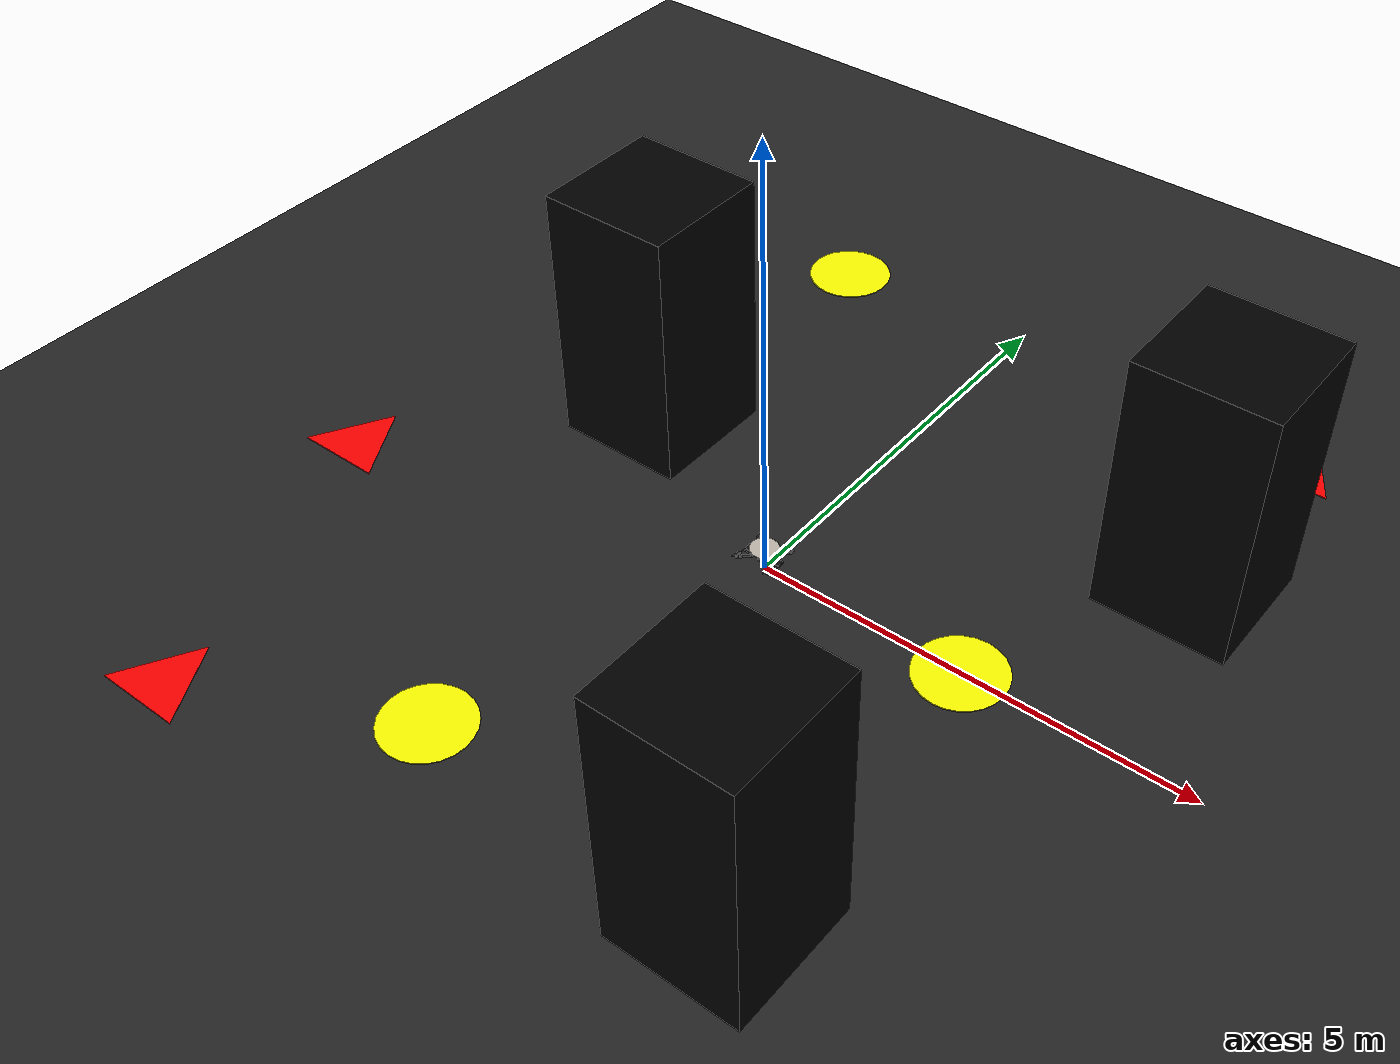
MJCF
<mujoco model="swift_pico">

  <include file="arena.xml"/>

  <asset>
    <mesh name="base_link" file="meshes/base_link.obj" scale="5 5 5"/>
    <mesh name="m1_link"   file="meshes/m1_link.obj"   scale="5 5 5"/>
    <mesh name="m4_link"   file="meshes/m4_link.obj"   scale="5 5 5"/>

    <mesh name="whycode_marker" file="meshes/whycon_marker.obj" scale="0.5 0.5 0.5"/>
    <texture name="whycode_marker_tex" type="2d" file="meshes/textures/whycode_marker_1.png"/>

    <material name="whycode_marker_mat" texture="whycode_marker_tex"
              specular="0.0" shininess="0.0" reflectance="0.0"/>
  </asset>

  <worldbody>
    <body name="drone" pos="0 0 0.3" euler="0 0 180">
      <freejoint name="drone_freejoint"/>

      <!-- Physics collision box (matches SDF: 0.47×0.47×0.11 at z=-0.12) -->
      <inertial mass="1.5" pos="0 0 0"
                fullinertia="0.0347563 0.07 0.0977 0 0 0"/>
      <geom name="body_col" type="box" size="0.235 0.235 0.055" pos="0 0 -0.12"
            rgba="0 0 0 0" contype="1" conaffinity="1"/>

      <!-- ── Visual meshes (no collision) ── -->

      <geom name="body_vis" type="mesh" mesh="base_link" pos="0 0 -0.029"
            rgba="0.05 0.05 0.05 1" contype="0" conaffinity="0"/>

      <!-- m1: front-right, ccw — dark gray so bright propeller edges do not
           create circular ring patterns that confuse WhyCon's circle detector -->
      <body name="prop_m1" pos="0.187 -0.187 -0.059">
        <joint name="spin_m1" type="hinge" axis="0 0 1"
               limited="false" damping="0" armature="0" frictionloss="0"/>
        <geom name="m1_vis" type="mesh" mesh="m1_link"
              rgba="0.15 0.15 0.15 1" contype="0" conaffinity="0"/>
      </body>

      <!-- m2: back-left, ccw -->
      <body name="prop_m2" pos="-0.187 0.187 -0.059">
        <joint name="spin_m2" type="hinge" axis="0 0 1"
               limited="false" damping="0" armature="0" frictionloss="0"/>
        <geom name="m2_vis" type="mesh" mesh="m1_link"
              rgba="0.15 0.15 0.15 1" contype="0" conaffinity="0"/>
      </body>

      <!-- m3: front-left, cw -->
      <body name="prop_m3" pos="0.187 0.187 -0.059">
        <joint name="spin_m3" type="hinge" axis="0 0 1"
               limited="false" damping="0" armature="0" frictionloss="0"/>
        <geom name="m3_vis" type="mesh" mesh="m4_link"
              rgba="0.15 0.15 0.15 1" contype="0" conaffinity="0"/>
      </body>

      <!-- m4: back-right, cw -->
      <body name="prop_m4" pos="-0.187 -0.187 -0.059">
        <joint name="spin_m4" type="hinge" axis="0 0 1"
               limited="false" damping="0" armature="0" frictionloss="0"/>
        <geom name="m4_vis" type="mesh" mesh="m4_link"
              rgba="0.15 0.15 0.15 1" contype="0" conaffinity="0"/>
      </body>

      <!-- WhyCode marker ID 1. -->
      <geom name="whycode_marker" type="mesh" mesh="whycode_marker"
            material="whycode_marker_mat" pos="0 0 -0.026"
            contype="0" conaffinity="0"/>

      <!-- ── Thrust sites (motor force application points) ── -->
      <!-- m1 FR ccw: reactive yaw = -Km = -0.016 -->
      <site name="thrust_m1" pos="0.19 -0.19 -0.12" size="0.01" rgba="1 0 0 0"/>
      <!-- m2 BL ccw: reactive yaw = -Km -->
      <site name="thrust_m2" pos="-0.19 0.19 -0.12" size="0.01" rgba="1 0 0 0"/>
      <!-- m3 FL cw: reactive yaw = +Km = +0.016 -->
      <site name="thrust_m3" pos="0.19 0.19 -0.12" size="0.01" rgba="0 0 1 0"/>
      <!-- m4 BR cw: reactive yaw = +Km -->
      <site name="thrust_m4" pos="-0.19 -0.19 -0.12" size="0.01" rgba="0 0 1 0"/>

    </body>
  </worldbody>

  <actuator>
    <motor name="m1" site="thrust_m1" gear="0 0 1 0 0 -0.016" ctrllimited="true" ctrlrange="0 5.47"/>
    <motor name="m2" site="thrust_m2" gear="0 0 1 0 0 -0.016" ctrllimited="true" ctrlrange="0 5.47"/>
    <motor name="m3" site="thrust_m3" gear="0 0 1 0 0  0.016" ctrllimited="true" ctrlrange="0 5.47"/>
    <motor name="m4" site="thrust_m4" gear="0 0 1 0 0  0.016" ctrllimited="true" ctrlrange="0 5.47"/>
  </actuator>

</mujoco>

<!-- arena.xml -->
<mujoco model="khojo_arena">

  <option gravity="0 0 -9.81" timestep="0.005" integrator="RK4"/>

  <visual>
    <!-- Headlight follows the active camera — at z=20 pointing down it acts as overhead sun -->
    <headlight ambient="0.7 0.7 0.7" diffuse="0.9 0.9 0.9" specular="0.1 0.1 0.1"/>
    <rgba haze="0.0 0.0 0.0 1"/>
    <global azimuth="120" elevation="-20" offwidth="1920" offheight="1920"/>

    <quality offsamples="0" shadowsize="0" numslices="14" numstacks="8" numquads="2"/>
  </visual>

  <asset>
    <!-- ── Skybox / floor ── -->
    <texture type="skybox" builtin="gradient" rgb1="0.4 0.6 0.8" rgb2="0 0 0"
             width="512" height="512"/>
    <material name="floor_mat" rgba="0.15 0.15 0.15 1" reflectance="0.0"/>

    <texture name="arena_tex" type="2d" file="meshes/textures/Khojo_Arena.png"/>
    <material name="arena_mat" texture="arena_tex" texuniform="true" texrepeat="0.11547 0.11547"
              rgba="1 1 1 1  " reflectance="0.0"/>

    <!-- Flat equilateral-triangle floor marker, side 1m. MuJoCo has no
         triangular-prism primitive, so this is a thin (0.01m) hand-built
         mesh instead (see meshes/triangle_marker.obj). -->
    <mesh name="triangle_marker" file="meshes/triangle_marker.obj"/>
  </asset>

  <worldbody>
    <light pos="0 0 10" dir="0 0 -1" directional="true" castshadow="false"
           diffuse="0.9 0.9 0.9" specular="0.1 0.1 0.1"/>
    <light pos="0 0 20" dir="0 0 -1" directional="true"
           diffuse="0.8 0.8 0.8" specular="0.0 0.0 0.0" castshadow="false"/>
    <geom name="floor" type="plane" size="20 20 0.1" material="floor_mat"
          contype="1" conaffinity="1"/>

    <geom name="arena_floor" type="plane" size="8.6603 8.6603 0.01" pos="0 0 0.001"
          material="arena_mat" contype="0" conaffinity="0"/>

    <!-- Black square prism obstacles: 1.5m x 1.5m footprint, 3m tall,
         base on the floor (pos.z = half-height = 1.5 so each sits at
         z=0..3, not floating). -->
    <geom name="obstacle_1" type="box" size="0.75 0.75 1.5" pos="-2.4068 1.2034 1.5"
          rgba="0 0 0 1" contype="1" conaffinity="1"/>

    <geom name="obstacle_2" type="box" size="0.75 0.75 1.5" pos="3.6102 2.4068 1.5"
          rgba="0 0 0 1" contype="1" conaffinity="1"/>

    <geom name="obstacle_3" type="box" size="0.75 0.75 1.5" pos="2.4068 -3.6102 1.5"
          rgba="0 0 0 1" contype="1" conaffinity="1"/>

    <geom name="obstacle_circle_1" type="cylinder" size="0.5 0.005" pos="-2.4068 4.8137 0.005"
          rgba="1 1 0 1" contype="0" conaffinity="0"/>
    <geom name="obstacle_circle_2" type="cylinder" size="0.5 0.005" pos="2.4068 0.0000 0.005"
          rgba="1 1 0 1" contype="0" conaffinity="0"/>
    <geom name="obstacle_circle_3" type="cylinder" size="0.5 0.005" pos="-1.2034 -3.6102 0.005"
          rgba="1 1 0 1" contype="0" conaffinity="0"/>

    <geom name="obstacle_triangle_1" type="mesh" mesh="triangle_marker" pos="3.6102 4.8137 0.005"
          rgba="1 0 0 1" contype="0" conaffinity="0"/>
    <geom name="obstacle_triangle_2" type="mesh" mesh="triangle_marker" pos="-4.8137 -1.2034 0.005"
          rgba="1 0 0 1" contype="0" conaffinity="0"/>
    <geom name="obstacle_triangle_3" type="mesh" mesh="triangle_marker" pos="-3.6102 -4.8137 0.005"
          rgba="1 0 0 1" contype="0" conaffinity="0"/>

    <camera name="top_cam" pos="0 0 15" xyaxes="1 0 0 0 1 0" fovy="60"/>
  </worldbody>
</mujoco>
